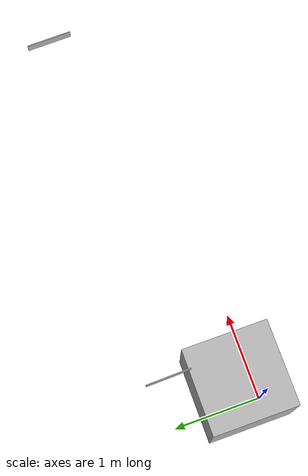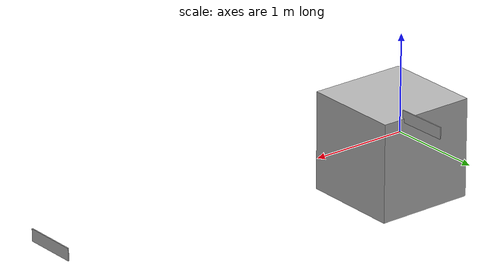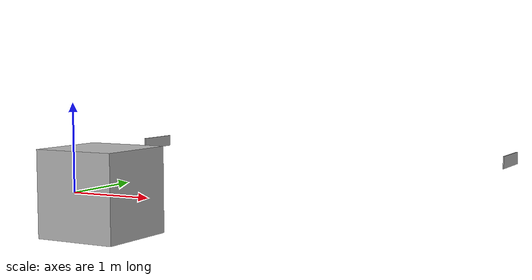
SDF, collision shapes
<?xml version='1.0'?>
<sdf version='1.7'>
  <model name='car_golf_with_plaka'>
    <link name='link'>
      <inertial>
        <mass>1</mass>
        <inertia>
          <ixx>0.083</ixx>
          <ixy>0</ixy>
          <ixz>0</ixz>
          <iyy>0.083</iyy>
          <iyz>0</iyz>
          <izz>0.083</izz>
        </inertia>
      </inertial>
      <self_collide>0</self_collide>
      <enable_wind>0</enable_wind>
      <kinematic>0</kinematic>
      <pose>0.247978 0.166948 0 0 -0 0</pose>
      <visual name='visual'>
        <geometry>
          <mesh>
            <uri>model://car_golf/meshes/golf.dae</uri>
          </mesh>
        </geometry>
        <material>
          <shader type='pixel'/>
          <emissive>0 0 0 1</emissive>
        </material>
        <pose>0 0 0 0 -0 0</pose>
        <transparency>0</transparency>
        <cast_shadows>1</cast_shadows>
      </visual>
      <collision name='collision'>
        <laser_retro>0</laser_retro>
        <max_contacts>10</max_contacts>
        <pose>0 0 0 0 -0 0</pose>
        <geometry>
          <box>
            <size>1 1 1</size>
          </box>
        </geometry>
        <surface>
          <friction>
            <ode>
              <mu>1</mu>
              <mu2>1</mu2>
              <fdir1>0 0 0</fdir1>
              <slip1>0</slip1>
              <slip2>0</slip2>
            </ode>
            <torsional>
              <coefficient>1</coefficient>
              <patch_radius>0</patch_radius>
              <surface_radius>0</surface_radius>
              <use_patch_radius>1</use_patch_radius>
              <ode>
                <slip>0</slip>
              </ode>
            </torsional>
          </friction>
          <bounce>
            <restitution_coefficient>0</restitution_coefficient>
            <threshold>1e+06</threshold>
          </bounce>
          <contact>
            <collide_without_contact>0</collide_without_contact>
            <collide_without_contact_bitmask>1</collide_without_contact_bitmask>
            <collide_bitmask>1</collide_bitmask>
            <ode>
              <soft_cfm>0</soft_cfm>
              <soft_erp>0.2</soft_erp>
              <kp>1e+13</kp>
              <kd>1</kd>
              <max_vel>0.01</max_vel>
              <min_depth>0</min_depth>
            </ode>
            <bullet>
              <split_impulse>1</split_impulse>
              <split_impulse_penetration_threshold>-0.01</split_impulse_penetration_threshold>
              <soft_cfm>0</soft_cfm>
              <soft_erp>0.2</soft_erp>
              <kp>1e+13</kp>
              <kd>1</kd>
            </bullet>
          </contact>
        </surface>
      </collision>
    </link>
    <model name='plaka'>
      <pose>4.68416 0.872607 0.514366 0 -0 1.58671</pose>
      <static>0</static>
      <link name='link'>
        <visual name='visual'>
          <geometry>
            <box>
              <size>0.52 0.01 0.12</size>
            </box>
          </geometry>
          <material>
            <script>
              <uri>model://plaka1/materials/scripts</uri>
              <name>myplaka</name>
            </script>
          </material>
        </visual>
        <collision name='collision'>
          <geometry>
            <box>
              <size>0.52 0.01 0.12</size>
            </box>
          </geometry>
          <max_contacts>10</max_contacts>
          <surface>
            <contact>
              <ode/>
            </contact>
            <bounce/>
            <friction>
              <torsional>
                <ode/>
              </torsional>
              <ode/>
            </friction>
          </surface>
        </collision>
        <self_collide>0</self_collide>
        <inertial>
          <pose>0 0 0 0 -0 0</pose>
          <inertia>
            <ixx>1</ixx>
            <ixy>0</ixy>
            <ixz>0</ixz>
            <iyy>1</iyy>
            <iyz>0</iyz>
            <izz>1</izz>
          </inertia>
          <mass>1</mass>
        </inertial>
        <enable_wind>0</enable_wind>
        <kinematic>0</kinematic>
      </link>
    </model>
    <model name='plaka_0'>
      <pose>0.508091 0.902713 0.520671 0 0 -1.54978</pose>
      <static>0</static>
      <link name='link'>
        <visual name='visual'>
          <geometry>
            <box>
              <size>0.52 0.01 0.12</size>
            </box>
          </geometry>
          <material>
            <script>
              <uri>model://plaka1/materials/scripts</uri>
              <name>myplaka</name>
            </script>
          </material>
        </visual>
        <collision name='collision'>
          <geometry>
            <box>
              <size>0.52 0.01 0.12</size>
            </box>
          </geometry>
          <max_contacts>10</max_contacts>
          <surface>
            <contact>
              <ode/>
            </contact>
            <bounce/>
            <friction>
              <torsional>
                <ode/>
              </torsional>
              <ode/>
            </friction>
          </surface>
        </collision>
        <self_collide>0</self_collide>
        <inertial>
          <pose>0 0 0 0 -0 0</pose>
          <inertia>
            <ixx>1</ixx>
            <ixy>0</ixy>
            <ixz>0</ixz>
            <iyy>1</iyy>
            <iyz>0</iyz>
            <izz>1</izz>
          </inertia>
          <mass>1</mass>
        </inertial>
        <enable_wind>0</enable_wind>
        <kinematic>0</kinematic>
      </link>
    </model>
    <joint name='link_JOINT_arkaplaka' type='fixed'>
      <parent>link</parent>
      <child>plaka::link</child>
      <pose>0 0 0 0 -0 0</pose>
      <physics>
        <ode>
          <limit>
            <cfm>0</cfm>
            <erp>0.2</erp>
          </limit>
          <suspension>
            <cfm>0</cfm>
            <erp>0.2</erp>
          </suspension>
        </ode>
      </physics>
    </joint>
    <joint name='link_JOINT_onplaka' type='fixed'>
      <parent>link</parent>
      <child>plaka_0::link</child>
      <pose>0 0 0 0 -0 0</pose>
      <physics>
        <ode>
          <limit>
            <cfm>0</cfm>
            <erp>0.2</erp>
          </limit>
          <suspension>
            <cfm>0</cfm>
            <erp>0.2</erp>
          </suspension>
        </ode>
      </physics>
    </joint>
    <static>1</static>
    <allow_auto_disable>1</allow_auto_disable>
  </model>
</sdf>
